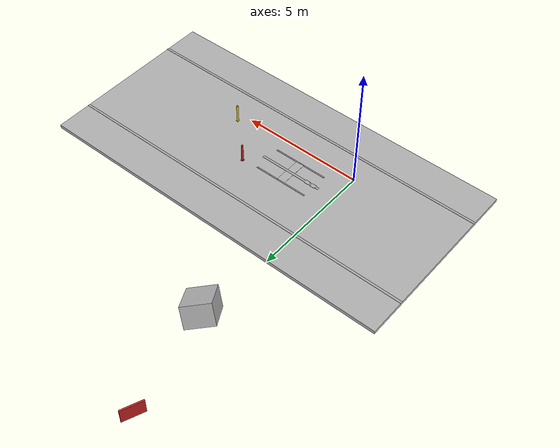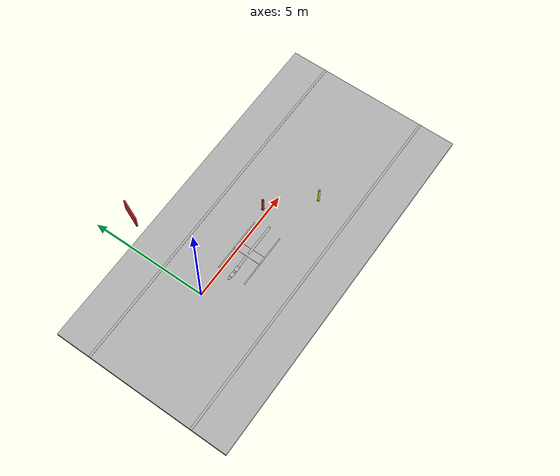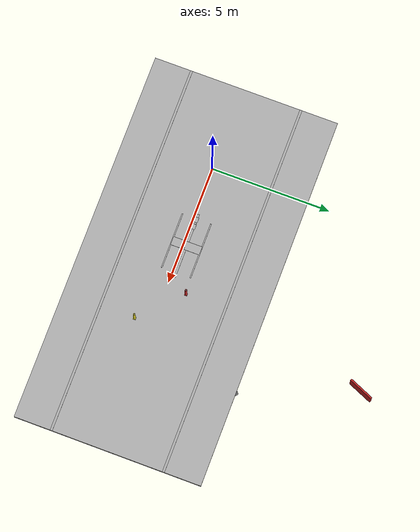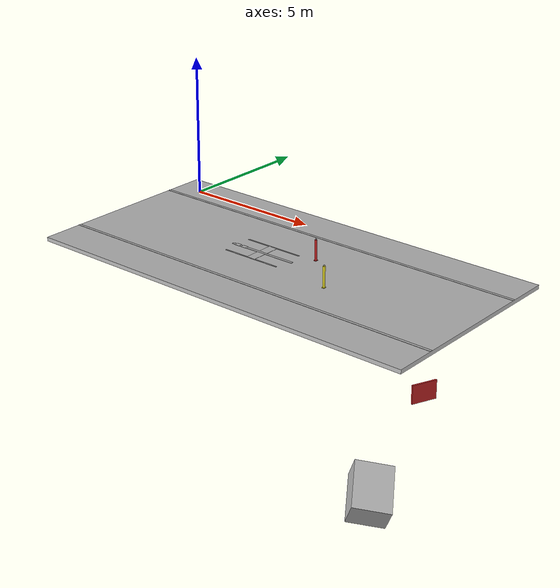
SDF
<sdf version="1.6">
 <world name="abdu_sualti">
  <model name="rock_c">
   <static>true</static>
   <pose>6.5 2.2 -11.45 0.5 0.2 0.7</pose>
   <link name="link">
    <collision name="c"><geometry><box><size>1.6 2.1 1.2</size></box></geometry></collision>
    <visual name="v">
     <geometry><box><size>1.6 2.1 1.2</size></box></geometry>
     <material><script><uri>file://__ABDU_WATER_SCRIPTS__</uri><name>Abdu/Rock</name></script></material>
    </visual>
   </link>
  </model>
  <model name="challenge_floor">
   <static>true</static>
   <pose>4.0 0 -1.675 0 0 0</pose>
   <link name="link">
    <collision name="collision"><geometry><box><size>16 8 0.15</size></box></geometry></collision>
    <visual name="tile">
     <cast_shadows>false</cast_shadows>
     <geometry><box><size>16 8 0.15</size></box></geometry>
     <material><script><uri>file://__ABDU_WATER_SCRIPTS__</uri><name>Abdu/PoolTile</name></script></material>
    </visual>
    <visual name="lane_l">
     <pose>0 2.4 0.08 0 0 0</pose>
     <geometry><box><size>16 0.10 0.01</size></box></geometry>
     <material><script><uri>file://__ABDU_WATER_SCRIPTS__</uri><name>Abdu/PoolLine</name></script></material>
    </visual>
    <visual name="lane_r">
     <pose>0 -2.4 0.08 0 0 0</pose>
     <geometry><box><size>16 0.10 0.01</size></box></geometry>
     <material><script><uri>file://__ABDU_WATER_SCRIPTS__</uri><name>Abdu/PoolLine</name></script></material>
    </visual>
   </link>
  </model>
  <model name="gate_center_guide">
   <static>true</static>
   <pose>3.0 0 -1.592 0 0 0</pose>
   <link name="link">
    <visual name="center_stripe">
     <geometry><box><size>2.80 0.10 0.012</size></box></geometry>
     <material><script><uri>file://__ABDU_WATER_SCRIPTS__</uri><name>Abdu/GateGuide</name></script></material>
    </visual>
    <visual name="edge_l">
     <pose>0 0.62 0 0 0 0</pose>
     <geometry><box><size>2.40 0.05 0.012</size></box></geometry>
     <material><script><uri>file://__ABDU_WATER_SCRIPTS__</uri><name>Abdu/GateGuide</name></script></material>
    </visual>
    <visual name="edge_r">
     <pose>0 -0.62 0 0 0 0</pose>
     <geometry><box><size>2.40 0.05 0.012</size></box></geometry>
     <material><script><uri>file://__ABDU_WATER_SCRIPTS__</uri><name>Abdu/GateGuide</name></script></material>
    </visual>
    <visual name="in_mat">
     <pose>0 0 0.002 0 0 0</pose>
     <geometry><box><size>0.36 1.24 0.008</size></box></geometry>
     <material><script><uri>file://__ABDU_WATER_SCRIPTS__</uri><name>Abdu/GateGuide</name></script></material>
    </visual>
    <visual name="chev_1">
     <pose>-0.85 0 0.004 0 0 0.0</pose>
     <geometry><box><size>0.22 0.16 0.01</size></box></geometry>
     <material><script><uri>file://__ABDU_WATER_SCRIPTS__</uri><name>Abdu/GateGuide</name></script></material>
    </visual>
    <visual name="chev_2">
     <pose>-1.15 0 0.004 0 0 0.0</pose>
     <geometry><box><size>0.22 0.16 0.01</size></box></geometry>
     <material><script><uri>file://__ABDU_WATER_SCRIPTS__</uri><name>Abdu/GateGuide</name></script></material>
    </visual>
   </link>
  </model>
  <model name="knock_red">
   <static>false</static>
   <pose>4.90 0.70 -1.20 0 0 0</pose>
   <allow_auto_disable>false</allow_auto_disable>
   <link name="pole">
    <inertial>
     <pose>0 0 0.16 0 0 0</pose>
     <mass>0.42</mass>
     <inertia><ixx>0.026</ixx><ixy>0</ixy><ixz>0</ixz><iyy>0.026</iyy><iyz>0</iyz><izz>0.0005</izz></inertia>
    </inertial>
    <collision name="shaft">
     <geometry><cylinder><radius>0.045</radius><length>0.80</length></cylinder></geometry>
     <surface>
      <friction><ode><mu>0.28</mu><mu2>0.28</mu2></ode></friction>
      <contact><ode><kp>120000</kp><kd>40</kd><max_vel>1.2</max_vel><min_depth>0.001</min_depth></ode></contact>
     </surface>
    </collision>
    <collision name="base">
     <pose>0 0 -0.390 0 0 0</pose>
     <geometry><box><size>0.11 0.11 0.022</size></box></geometry>
     <surface><friction><ode><mu>0.32</mu><mu2>0.32</mu2></ode></friction></surface>
    </collision>
    <visual name="shaft">
     <geometry><cylinder><radius>0.045</radius><length>0.80</length></cylinder></geometry>
     <material><script><uri>file://__ABDU_WATER_SCRIPTS__</uri><name>Abdu/KnockRed</name></script></material>
    </visual>
    <visual name="base">
     <pose>0 0 -0.390 0 0 0</pose>
     <geometry><box><size>0.11 0.11 0.022</size></box></geometry>
     <material><script><uri>file://__ABDU_WATER_SCRIPTS__</uri><name>Abdu/KnockRed</name></script></material>
    </visual>
   </link>
   <link name="ball">
    <pose>0 0 0.428 0 0 0</pose>
    <inertial>
     <mass>0.045</mass>
     <inertia><ixx>1.4e-5</ixx><ixy>0</ixy><ixz>0</ixz><iyy>1.4e-5</iyy><iyz>0</iyz><izz>1.4e-5</izz></inertia>
    </inertial>
    <collision name="c">
     <geometry><sphere><radius>0.028</radius></sphere></geometry>
     <surface>
      <bounce><restitution_coefficient>0.25</restitution_coefficient><threshold>0.08</threshold></bounce>
      <friction><ode><mu>0.35</mu><mu2>0.35</mu2></ode></friction>
     </surface>
    </collision>
    <visual name="v">
     <geometry><sphere><radius>0.028</radius></sphere></geometry>
     <material><script><uri>file://__ABDU_WATER_SCRIPTS__</uri><name>Abdu/GolfBall</name></script></material>
    </visual>
   </link>
   <joint name="ball_sit" type="revolute">
    <parent>pole</parent>
    <child>ball</child>
    <axis>
     <xyz>0 1 0</xyz>
     <limit><lower>-3.14</lower><upper>3.14</upper><effort>0.0</effort><velocity>8</velocity></limit>
     <dynamics><damping>0.002</damping><friction>0.004</friction></dynamics>
    </axis>
    <physics><ode><cfm>0.01</cfm><erp>0.2</erp></ode></physics>
   </joint>
  </model>
  <model name="knock_yellow">
   <static>false</static>
   <pose>6.55 -0.90 -1.20 0 0 0</pose>
   <allow_auto_disable>false</allow_auto_disable>
   <link name="pole">
    <inertial>
     <pose>0 0 0.16 0 0 0</pose>
     <mass>0.42</mass>
     <inertia><ixx>0.026</ixx><ixy>0</ixy><ixz>0</ixz><iyy>0.026</iyy><iyz>0</iyz><izz>0.0005</izz></inertia>
    </inertial>
    <collision name="shaft">
     <geometry><cylinder><radius>0.045</radius><length>0.80</length></cylinder></geometry>
     <surface>
      <friction><ode><mu>0.28</mu><mu2>0.28</mu2></ode></friction>
      <contact><ode><kp>120000</kp><kd>40</kd><max_vel>1.2</max_vel><min_depth>0.001</min_depth></ode></contact>
     </surface>
    </collision>
    <collision name="base">
     <pose>0 0 -0.390 0 0 0</pose>
     <geometry><box><size>0.11 0.11 0.022</size></box></geometry>
     <surface><friction><ode><mu>0.32</mu><mu2>0.32</mu2></ode></friction></surface>
    </collision>
    <visual name="shaft">
     <geometry><cylinder><radius>0.045</radius><length>0.80</length></cylinder></geometry>
     <material><script><uri>file://__ABDU_WATER_SCRIPTS__</uri><name>Abdu/KnockYellow</name></script></material>
    </visual>
    <visual name="base">
     <pose>0 0 -0.390 0 0 0</pose>
     <geometry><box><size>0.11 0.11 0.022</size></box></geometry>
     <material><script><uri>file://__ABDU_WATER_SCRIPTS__</uri><name>Abdu/KnockYellow</name></script></material>
    </visual>
   </link>
   <link name="ball">
    <pose>0 0 0.428 0 0 0</pose>
    <inertial>
     <mass>0.045</mass>
     <inertia><ixx>1.4e-5</ixx><ixy>0</ixy><ixz>0</ixz><iyy>1.4e-5</iyy><iyz>0</iyz><izz>1.4e-5</izz></inertia>
    </inertial>
    <collision name="c">
     <geometry><sphere><radius>0.028</radius></sphere></geometry>
     <surface>
      <bounce><restitution_coefficient>0.25</restitution_coefficient><threshold>0.08</threshold></bounce>
      <friction><ode><mu>0.35</mu><mu2>0.35</mu2></ode></friction>
     </surface>
    </collision>
    <visual name="v">
     <geometry><sphere><radius>0.028</radius></sphere></geometry>
     <material><script><uri>file://__ABDU_WATER_SCRIPTS__</uri><name>Abdu/GolfBall</name></script></material>
    </visual>
   </link>
   <joint name="ball_sit" type="revolute">
    <parent>pole</parent>
    <child>ball</child>
    <axis>
     <xyz>0 1 0</xyz>
     <limit><lower>-3.14</lower><upper>3.14</upper><effort>0.0</effort><velocity>8</velocity></limit>
     <dynamics><damping>0.002</damping><friction>0.004</friction></dynamics>
    </axis>
    <physics><ode><cfm>0.01</cfm><erp>0.2</erp></ode></physics>
   </joint>
  </model>
  <model name="panel_red">
   <static>true</static>
   <pose>4.5 8.6 -10.4 0 0 -0.4</pose>
   <link name="link">
    <collision name="c"><geometry><box><size>0.08 1.2 0.9</size></box></geometry></collision>
    <visual name="v">
     <geometry><box><size>0.08 1.2 0.9</size></box></geometry>
     <material>
      <script><uri>file://media/materials/scripts/gazebo.material</uri><name>Gazebo/Red</name></script>
     </material>
    </visual>
   </link>
  </model>
 </world>
</sdf>
